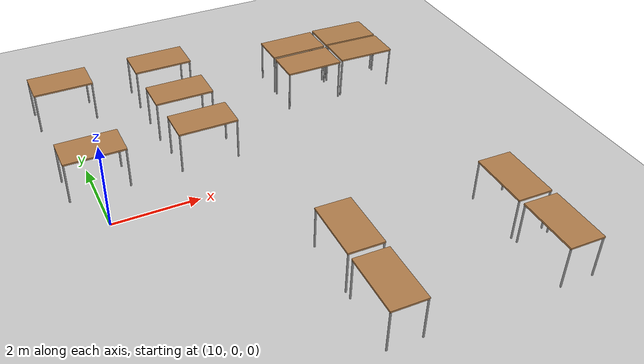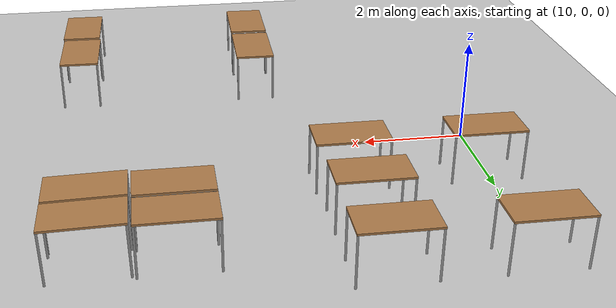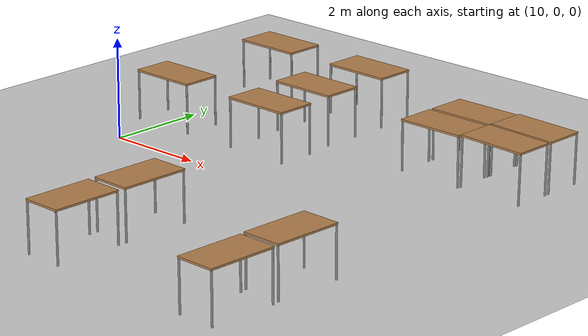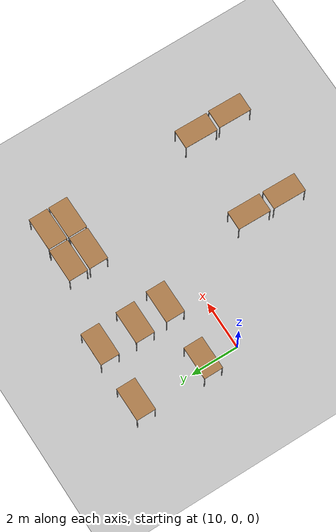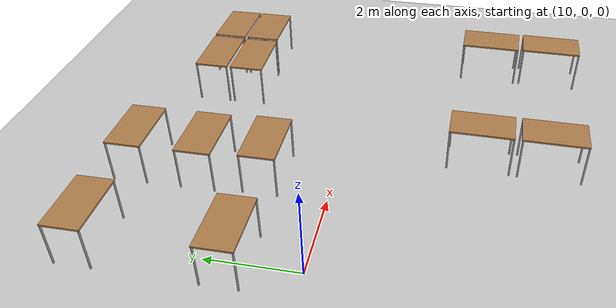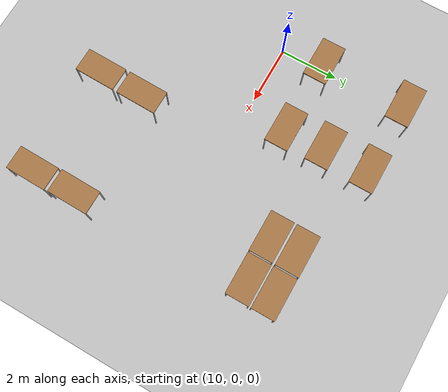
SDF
<sdf version="1.6">
 <world name="default">
  <model name="ground_plane">
   <static>1</static>
   <link name="link">
    <collision name="collision">
     <geometry><plane><normal>0 0 1</normal><size>100 100</size></plane></geometry>
     <surface><friction><ode><mu>100</mu><mu2>50</mu2></ode></friction></surface>
    </collision>
    <visual name="visual">
     <cast_shadows>0</cast_shadows>
     <geometry><plane><normal>0 0 1</normal><size>100 100</size></plane></geometry>
     <material>
      <script><uri>file://media/materials/scripts/gazebo.material</uri><name>Gazebo/Grey</name></script>
     </material>
    </visual>
   </link>
  </model>
  <model name="table">
   <static>0</static>
   <link name="link">
    <collision name="surface">
     <pose>0 0 1 0 -0 0</pose>
     <geometry><box><size>1.5 0.8 0.03</size></box></geometry>
     <surface><friction><ode><mu>0.6</mu><mu2>0.6</mu2></ode></friction></surface>
    </collision>
    <visual name="visual1">
     <pose>0 0 1 0 -0 0</pose>
     <geometry><box><size>1.4 0.8 0.04</size></box></geometry>
     <material>
      <script><uri>file://media/materials/scripts/gazebo.material</uri><name>Gazebo/Wood</name></script>
     </material>
    </visual>
    <collision name="front_left_leg">
     <pose>0.68 0.38 0.5 0 -0 0</pose>
     <geometry><cylinder><radius>0.02</radius><length>1</length></cylinder></geometry>
    </collision>
    <visual name="front_left_leg">
     <pose>0.68 0.38 0.5 0 -0 0</pose>
     <geometry><cylinder><radius>0.02</radius><length>1</length></cylinder></geometry>
     <material>
      <script><uri>file://media/materials/scripts/gazebo.material</uri><name>Gazebo/Grey</name></script>
     </material>
    </visual>
    <collision name="front_right_leg">
     <pose>0.68 -0.38 0.5 0 -0 0</pose>
     <geometry><cylinder><radius>0.02</radius><length>1</length></cylinder></geometry>
    </collision>
    <visual name="front_right_leg">
     <pose>0.68 -0.38 0.5 0 -0 0</pose>
     <geometry><cylinder><radius>0.02</radius><length>1</length></cylinder></geometry>
     <material>
      <script><uri>file://media/materials/scripts/gazebo.material</uri><name>Gazebo/Grey</name></script>
     </material>
    </visual>
    <collision name="back_right_leg">
     <pose>-0.68 -0.38 0.5 0 -0 0</pose>
     <geometry><cylinder><radius>0.02</radius><length>1</length></cylinder></geometry>
    </collision>
    <visual name="back_right_leg">
     <pose>-0.68 -0.38 0.5 0 -0 0</pose>
     <geometry><cylinder><radius>0.02</radius><length>1</length></cylinder></geometry>
     <material>
      <script><uri>file://media/materials/scripts/gazebo.material</uri><name>Gazebo/Grey</name></script>
     </material>
    </visual>
    <collision name="back_left_leg">
     <pose>-0.68 0.38 0.5 0 -0 0</pose>
     <geometry><cylinder><radius>0.02</radius><length>1</length></cylinder></geometry>
    </collision>
    <visual name="back_left_leg">
     <pose>-0.68 0.38 0.5 0 -0 0</pose>
     <geometry><cylinder><radius>0.02</radius><length>1</length></cylinder></geometry>
     <material>
      <script><uri>file://media/materials/scripts/gazebo.material</uri><name>Gazebo/Grey</name></script>
     </material>
    </visual>
    <inertial>
     <inertia><ixx>1</ixx><ixy>0</ixy><ixz>0</ixz><iyy>1</iyy><iyz>0</iyz><izz>1</izz></inertia>
     <mass>1</mass>
    </inertial>
   </link>
   <pose>12.5567 4.33789 -1e-06 0 1e-06 0</pose>
  </model>
  <model name="table_clone">
   <static>0</static>
   <link name="link">
    <collision name="surface">
     <pose>0 0 1 0 -0 0</pose>
     <geometry><box><size>1.5 0.8 0.03</size></box></geometry>
     <surface><friction><ode><mu>0.6</mu><mu2>0.6</mu2></ode></friction></surface>
    </collision>
    <visual name="visual1">
     <pose>0 0 1 0 -0 0</pose>
     <geometry><box><size>1.4 0.8 0.04</size></box></geometry>
     <material>
      <script><uri>file://media/materials/scripts/gazebo.material</uri><name>Gazebo/Wood</name></script>
     </material>
    </visual>
    <collision name="front_left_leg">
     <pose>0.68 0.38 0.5 0 -0 0</pose>
     <geometry><cylinder><radius>0.02</radius><length>1</length></cylinder></geometry>
    </collision>
    <visual name="front_left_leg">
     <pose>0.68 0.38 0.5 0 -0 0</pose>
     <geometry><cylinder><radius>0.02</radius><length>1</length></cylinder></geometry>
     <material>
      <script><uri>file://media/materials/scripts/gazebo.material</uri><name>Gazebo/Grey</name></script>
     </material>
    </visual>
    <collision name="front_right_leg">
     <pose>0.68 -0.38 0.5 0 -0 0</pose>
     <geometry><cylinder><radius>0.02</radius><length>1</length></cylinder></geometry>
    </collision>
    <visual name="front_right_leg">
     <pose>0.68 -0.38 0.5 0 -0 0</pose>
     <geometry><cylinder><radius>0.02</radius><length>1</length></cylinder></geometry>
     <material>
      <script><uri>file://media/materials/scripts/gazebo.material</uri><name>Gazebo/Grey</name></script>
     </material>
    </visual>
    <collision name="back_right_leg">
     <pose>-0.68 -0.38 0.5 0 -0 0</pose>
     <geometry><cylinder><radius>0.02</radius><length>1</length></cylinder></geometry>
    </collision>
    <visual name="back_right_leg">
     <pose>-0.68 -0.38 0.5 0 -0 0</pose>
     <geometry><cylinder><radius>0.02</radius><length>1</length></cylinder></geometry>
     <material>
      <script><uri>file://media/materials/scripts/gazebo.material</uri><name>Gazebo/Grey</name></script>
     </material>
    </visual>
    <collision name="back_left_leg">
     <pose>-0.68 0.38 0.5 0 -0 0</pose>
     <geometry><cylinder><radius>0.02</radius><length>1</length></cylinder></geometry>
    </collision>
    <visual name="back_left_leg">
     <pose>-0.68 0.38 0.5 0 -0 0</pose>
     <geometry><cylinder><radius>0.02</radius><length>1</length></cylinder></geometry>
     <material>
      <script><uri>file://media/materials/scripts/gazebo.material</uri><name>Gazebo/Grey</name></script>
     </material>
    </visual>
    <inertial>
     <inertia><ixx>1</ixx><ixy>0</ixy><ixz>0</ixz><iyy>1</iyy><iyz>0</iyz><izz>1</izz></inertia>
     <mass>1</mass>
    </inertial>
   </link>
   <pose>12.5697 2.81167 -9e-06 0 -1e-06 0</pose>
  </model>
  <model name="table_clone_0">
   <static>0</static>
   <link name="link">
    <collision name="surface">
     <pose>0 0 1 0 -0 0</pose>
     <geometry><box><size>1.5 0.8 0.03</size></box></geometry>
     <surface><friction><ode><mu>0.6</mu><mu2>0.6</mu2></ode></friction></surface>
    </collision>
    <visual name="visual1">
     <pose>0 0 1 0 -0 0</pose>
     <geometry><box><size>1.4 0.8 0.04</size></box></geometry>
     <material>
      <script><uri>file://media/materials/scripts/gazebo.material</uri><name>Gazebo/Wood</name></script>
     </material>
    </visual>
    <collision name="front_left_leg">
     <pose>0.68 0.38 0.5 0 -0 0</pose>
     <geometry><cylinder><radius>0.02</radius><length>1</length></cylinder></geometry>
    </collision>
    <visual name="front_left_leg">
     <pose>0.68 0.38 0.5 0 -0 0</pose>
     <geometry><cylinder><radius>0.02</radius><length>1</length></cylinder></geometry>
     <material>
      <script><uri>file://media/materials/scripts/gazebo.material</uri><name>Gazebo/Grey</name></script>
     </material>
    </visual>
    <collision name="front_right_leg">
     <pose>0.68 -0.38 0.5 0 -0 0</pose>
     <geometry><cylinder><radius>0.02</radius><length>1</length></cylinder></geometry>
    </collision>
    <visual name="front_right_leg">
     <pose>0.68 -0.38 0.5 0 -0 0</pose>
     <geometry><cylinder><radius>0.02</radius><length>1</length></cylinder></geometry>
     <material>
      <script><uri>file://media/materials/scripts/gazebo.material</uri><name>Gazebo/Grey</name></script>
     </material>
    </visual>
    <collision name="back_right_leg">
     <pose>-0.68 -0.38 0.5 0 -0 0</pose>
     <geometry><cylinder><radius>0.02</radius><length>1</length></cylinder></geometry>
    </collision>
    <visual name="back_right_leg">
     <pose>-0.68 -0.38 0.5 0 -0 0</pose>
     <geometry><cylinder><radius>0.02</radius><length>1</length></cylinder></geometry>
     <material>
      <script><uri>file://media/materials/scripts/gazebo.material</uri><name>Gazebo/Grey</name></script>
     </material>
    </visual>
    <collision name="back_left_leg">
     <pose>-0.68 0.38 0.5 0 -0 0</pose>
     <geometry><cylinder><radius>0.02</radius><length>1</length></cylinder></geometry>
    </collision>
    <visual name="back_left_leg">
     <pose>-0.68 0.38 0.5 0 -0 0</pose>
     <geometry><cylinder><radius>0.02</radius><length>1</length></cylinder></geometry>
     <material>
      <script><uri>file://media/materials/scripts/gazebo.material</uri><name>Gazebo/Grey</name></script>
     </material>
    </visual>
    <inertial>
     <inertia><ixx>1</ixx><ixy>0</ixy><ixz>0</ixz><iyy>1</iyy><iyz>0</iyz><izz>1</izz></inertia>
     <mass>1</mass>
    </inertial>
   </link>
   <pose>12.6467 1.45459 -1e-06 0 1e-06 0</pose>
  </model>
  <model name="table_clone_1">
   <static>0</static>
   <link name="link">
    <collision name="surface">
     <pose>0 0 1 0 -0 0</pose>
     <geometry><box><size>1.5 0.8 0.03</size></box></geometry>
     <surface><friction><ode><mu>0.6</mu><mu2>0.6</mu2></ode></friction></surface>
    </collision>
    <visual name="visual1">
     <pose>0 0 1 0 -0 0</pose>
     <geometry><box><size>1.4 0.8 0.04</size></box></geometry>
     <material>
      <script><uri>file://media/materials/scripts/gazebo.material</uri><name>Gazebo/Wood</name></script>
     </material>
    </visual>
    <collision name="front_left_leg">
     <pose>0.68 0.38 0.5 0 -0 0</pose>
     <geometry><cylinder><radius>0.02</radius><length>1</length></cylinder></geometry>
    </collision>
    <visual name="front_left_leg">
     <pose>0.68 0.38 0.5 0 -0 0</pose>
     <geometry><cylinder><radius>0.02</radius><length>1</length></cylinder></geometry>
     <material>
      <script><uri>file://media/materials/scripts/gazebo.material</uri><name>Gazebo/Grey</name></script>
     </material>
    </visual>
    <collision name="front_right_leg">
     <pose>0.68 -0.38 0.5 0 -0 0</pose>
     <geometry><cylinder><radius>0.02</radius><length>1</length></cylinder></geometry>
    </collision>
    <visual name="front_right_leg">
     <pose>0.68 -0.38 0.5 0 -0 0</pose>
     <geometry><cylinder><radius>0.02</radius><length>1</length></cylinder></geometry>
     <material>
      <script><uri>file://media/materials/scripts/gazebo.material</uri><name>Gazebo/Grey</name></script>
     </material>
    </visual>
    <collision name="back_right_leg">
     <pose>-0.68 -0.38 0.5 0 -0 0</pose>
     <geometry><cylinder><radius>0.02</radius><length>1</length></cylinder></geometry>
    </collision>
    <visual name="back_right_leg">
     <pose>-0.68 -0.38 0.5 0 -0 0</pose>
     <geometry><cylinder><radius>0.02</radius><length>1</length></cylinder></geometry>
     <material>
      <script><uri>file://media/materials/scripts/gazebo.material</uri><name>Gazebo/Grey</name></script>
     </material>
    </visual>
    <collision name="back_left_leg">
     <pose>-0.68 0.38 0.5 0 -0 0</pose>
     <geometry><cylinder><radius>0.02</radius><length>1</length></cylinder></geometry>
    </collision>
    <visual name="back_left_leg">
     <pose>-0.68 0.38 0.5 0 -0 0</pose>
     <geometry><cylinder><radius>0.02</radius><length>1</length></cylinder></geometry>
     <material>
      <script><uri>file://media/materials/scripts/gazebo.material</uri><name>Gazebo/Grey</name></script>
     </material>
    </visual>
    <inertial>
     <inertia><ixx>1</ixx><ixy>0</ixy><ixz>0</ixz><iyy>1</iyy><iyz>0</iyz><izz>1</izz></inertia>
     <mass>1</mass>
    </inertial>
   </link>
   <pose>10.0886 1.4527 -9e-06 0 -1e-06 0</pose>
  </model>
  <model name="table_clone_3">
   <static>0</static>
   <link name="link">
    <collision name="surface">
     <pose>0 0 1 0 -0 0</pose>
     <geometry><box><size>1.5 0.8 0.03</size></box></geometry>
     <surface><friction><ode><mu>0.6</mu><mu2>0.6</mu2></ode></friction></surface>
    </collision>
    <visual name="visual1">
     <pose>0 0 1 0 -0 0</pose>
     <geometry><box><size>1.4 0.8 0.04</size></box></geometry>
     <material>
      <script><uri>file://media/materials/scripts/gazebo.material</uri><name>Gazebo/Wood</name></script>
     </material>
    </visual>
    <collision name="front_left_leg">
     <pose>0.68 0.38 0.5 0 -0 0</pose>
     <geometry><cylinder><radius>0.02</radius><length>1</length></cylinder></geometry>
    </collision>
    <visual name="front_left_leg">
     <pose>0.68 0.38 0.5 0 -0 0</pose>
     <geometry><cylinder><radius>0.02</radius><length>1</length></cylinder></geometry>
     <material>
      <script><uri>file://media/materials/scripts/gazebo.material</uri><name>Gazebo/Grey</name></script>
     </material>
    </visual>
    <collision name="front_right_leg">
     <pose>0.68 -0.38 0.5 0 -0 0</pose>
     <geometry><cylinder><radius>0.02</radius><length>1</length></cylinder></geometry>
    </collision>
    <visual name="front_right_leg">
     <pose>0.68 -0.38 0.5 0 -0 0</pose>
     <geometry><cylinder><radius>0.02</radius><length>1</length></cylinder></geometry>
     <material>
      <script><uri>file://media/materials/scripts/gazebo.material</uri><name>Gazebo/Grey</name></script>
     </material>
    </visual>
    <collision name="back_right_leg">
     <pose>-0.68 -0.38 0.5 0 -0 0</pose>
     <geometry><cylinder><radius>0.02</radius><length>1</length></cylinder></geometry>
    </collision>
    <visual name="back_right_leg">
     <pose>-0.68 -0.38 0.5 0 -0 0</pose>
     <geometry><cylinder><radius>0.02</radius><length>1</length></cylinder></geometry>
     <material>
      <script><uri>file://media/materials/scripts/gazebo.material</uri><name>Gazebo/Grey</name></script>
     </material>
    </visual>
    <collision name="back_left_leg">
     <pose>-0.68 0.38 0.5 0 -0 0</pose>
     <geometry><cylinder><radius>0.02</radius><length>1</length></cylinder></geometry>
    </collision>
    <visual name="back_left_leg">
     <pose>-0.68 0.38 0.5 0 -0 0</pose>
     <geometry><cylinder><radius>0.02</radius><length>1</length></cylinder></geometry>
     <material>
      <script><uri>file://media/materials/scripts/gazebo.material</uri><name>Gazebo/Grey</name></script>
     </material>
    </visual>
    <inertial>
     <inertia><ixx>1</ixx><ixy>0</ixy><ixz>0</ixz><iyy>1</iyy><iyz>0</iyz><izz>1</izz></inertia>
     <mass>1</mass>
    </inertial>
   </link>
   <pose>10.0949 4.34803 -9e-06 0 -1e-06 0</pose>
  </model>
  <model name="table_clone_8_clone_2">
   <static>0</static>
   <link name="link">
    <collision name="surface">
     <pose>0 0 1 0 -0 0</pose>
     <geometry><box><size>1.5 0.8 0.03</size></box></geometry>
     <surface><friction><ode><mu>0.6</mu><mu2>0.6</mu2></ode></friction></surface>
    </collision>
    <visual name="visual1">
     <pose>0 0 1 0 -0 0</pose>
     <geometry><box><size>1.4 0.8 0.04</size></box></geometry>
     <material>
      <script><uri>file://media/materials/scripts/gazebo.material</uri><name>Gazebo/Wood</name></script>
     </material>
    </visual>
    <collision name="front_left_leg">
     <pose>0.68 0.38 0.5 0 -0 0</pose>
     <geometry><cylinder><radius>0.02</radius><length>1</length></cylinder></geometry>
    </collision>
    <visual name="front_left_leg">
     <pose>0.68 0.38 0.5 0 -0 0</pose>
     <geometry><cylinder><radius>0.02</radius><length>1</length></cylinder></geometry>
     <material>
      <script><uri>file://media/materials/scripts/gazebo.material</uri><name>Gazebo/Grey</name></script>
     </material>
    </visual>
    <collision name="front_right_leg">
     <pose>0.68 -0.38 0.5 0 -0 0</pose>
     <geometry><cylinder><radius>0.02</radius><length>1</length></cylinder></geometry>
    </collision>
    <visual name="front_right_leg">
     <pose>0.68 -0.38 0.5 0 -0 0</pose>
     <geometry><cylinder><radius>0.02</radius><length>1</length></cylinder></geometry>
     <material>
      <script><uri>file://media/materials/scripts/gazebo.material</uri><name>Gazebo/Grey</name></script>
     </material>
    </visual>
    <collision name="back_right_leg">
     <pose>-0.68 -0.38 0.5 0 -0 0</pose>
     <geometry><cylinder><radius>0.02</radius><length>1</length></cylinder></geometry>
    </collision>
    <visual name="back_right_leg">
     <pose>-0.68 -0.38 0.5 0 -0 0</pose>
     <geometry><cylinder><radius>0.02</radius><length>1</length></cylinder></geometry>
     <material>
      <script><uri>file://media/materials/scripts/gazebo.material</uri><name>Gazebo/Grey</name></script>
     </material>
    </visual>
    <collision name="back_left_leg">
     <pose>-0.68 0.38 0.5 0 -0 0</pose>
     <geometry><cylinder><radius>0.02</radius><length>1</length></cylinder></geometry>
    </collision>
    <visual name="back_left_leg">
     <pose>-0.68 0.38 0.5 0 -0 0</pose>
     <geometry><cylinder><radius>0.02</radius><length>1</length></cylinder></geometry>
     <material>
      <script><uri>file://media/materials/scripts/gazebo.material</uri><name>Gazebo/Grey</name></script>
     </material>
    </visual>
    <inertial>
     <inertia><ixx>1</ixx><ixy>0</ixy><ixz>0</ixz><iyy>1</iyy><iyz>0</iyz><izz>1</izz></inertia>
     <mass>1</mass>
    </inertial>
   </link>
   <pose>17.6975 -3.1554 -8e-06 0 -1e-06 -1.58704</pose>
  </model>
  <model name="table_clone_8_clone_3">
   <static>0</static>
   <link name="link">
    <collision name="surface">
     <pose>0 0 1 0 -0 0</pose>
     <geometry><box><size>1.5 0.8 0.03</size></box></geometry>
     <surface><friction><ode><mu>0.6</mu><mu2>0.6</mu2></ode></friction></surface>
    </collision>
    <visual name="visual1">
     <pose>0 0 1 0 -0 0</pose>
     <geometry><box><size>1.4 0.8 0.04</size></box></geometry>
     <material>
      <script><uri>file://media/materials/scripts/gazebo.material</uri><name>Gazebo/Wood</name></script>
     </material>
    </visual>
    <collision name="front_left_leg">
     <pose>0.68 0.38 0.5 0 -0 0</pose>
     <geometry><cylinder><radius>0.02</radius><length>1</length></cylinder></geometry>
    </collision>
    <visual name="front_left_leg">
     <pose>0.68 0.38 0.5 0 -0 0</pose>
     <geometry><cylinder><radius>0.02</radius><length>1</length></cylinder></geometry>
     <material>
      <script><uri>file://media/materials/scripts/gazebo.material</uri><name>Gazebo/Grey</name></script>
     </material>
    </visual>
    <collision name="front_right_leg">
     <pose>0.68 -0.38 0.5 0 -0 0</pose>
     <geometry><cylinder><radius>0.02</radius><length>1</length></cylinder></geometry>
    </collision>
    <visual name="front_right_leg">
     <pose>0.68 -0.38 0.5 0 -0 0</pose>
     <geometry><cylinder><radius>0.02</radius><length>1</length></cylinder></geometry>
     <material>
      <script><uri>file://media/materials/scripts/gazebo.material</uri><name>Gazebo/Grey</name></script>
     </material>
    </visual>
    <collision name="back_right_leg">
     <pose>-0.68 -0.38 0.5 0 -0 0</pose>
     <geometry><cylinder><radius>0.02</radius><length>1</length></cylinder></geometry>
    </collision>
    <visual name="back_right_leg">
     <pose>-0.68 -0.38 0.5 0 -0 0</pose>
     <geometry><cylinder><radius>0.02</radius><length>1</length></cylinder></geometry>
     <material>
      <script><uri>file://media/materials/scripts/gazebo.material</uri><name>Gazebo/Grey</name></script>
     </material>
    </visual>
    <collision name="back_left_leg">
     <pose>-0.68 0.38 0.5 0 -0 0</pose>
     <geometry><cylinder><radius>0.02</radius><length>1</length></cylinder></geometry>
    </collision>
    <visual name="back_left_leg">
     <pose>-0.68 0.38 0.5 0 -0 0</pose>
     <geometry><cylinder><radius>0.02</radius><length>1</length></cylinder></geometry>
     <material>
      <script><uri>file://media/materials/scripts/gazebo.material</uri><name>Gazebo/Grey</name></script>
     </material>
    </visual>
    <inertial>
     <inertia><ixx>1</ixx><ixy>0</ixy><ixz>0</ixz><iyy>1</iyy><iyz>0</iyz><izz>1</izz></inertia>
     <mass>1</mass>
    </inertial>
   </link>
   <pose>17.7018 -4.66294 -2e-06 0 1e-06 -1.58704</pose>
  </model>
  <model name="table_clone_8_clone_4">
   <static>0</static>
   <link name="link">
    <collision name="surface">
     <pose>0 0 1 0 -0 0</pose>
     <geometry><box><size>1.5 0.8 0.03</size></box></geometry>
     <surface><friction><ode><mu>0.6</mu><mu2>0.6</mu2></ode></friction></surface>
    </collision>
    <visual name="visual1">
     <pose>0 0 1 0 -0 0</pose>
     <geometry><box><size>1.4 0.8 0.04</size></box></geometry>
     <material>
      <script><uri>file://media/materials/scripts/gazebo.material</uri><name>Gazebo/Wood</name></script>
     </material>
    </visual>
    <collision name="front_left_leg">
     <pose>0.68 0.38 0.5 0 -0 0</pose>
     <geometry><cylinder><radius>0.02</radius><length>1</length></cylinder></geometry>
    </collision>
    <visual name="front_left_leg">
     <pose>0.68 0.38 0.5 0 -0 0</pose>
     <geometry><cylinder><radius>0.02</radius><length>1</length></cylinder></geometry>
     <material>
      <script><uri>file://media/materials/scripts/gazebo.material</uri><name>Gazebo/Grey</name></script>
     </material>
    </visual>
    <collision name="front_right_leg">
     <pose>0.68 -0.38 0.5 0 -0 0</pose>
     <geometry><cylinder><radius>0.02</radius><length>1</length></cylinder></geometry>
    </collision>
    <visual name="front_right_leg">
     <pose>0.68 -0.38 0.5 0 -0 0</pose>
     <geometry><cylinder><radius>0.02</radius><length>1</length></cylinder></geometry>
     <material>
      <script><uri>file://media/materials/scripts/gazebo.material</uri><name>Gazebo/Grey</name></script>
     </material>
    </visual>
    <collision name="back_right_leg">
     <pose>-0.68 -0.38 0.5 0 -0 0</pose>
     <geometry><cylinder><radius>0.02</radius><length>1</length></cylinder></geometry>
    </collision>
    <visual name="back_right_leg">
     <pose>-0.68 -0.38 0.5 0 -0 0</pose>
     <geometry><cylinder><radius>0.02</radius><length>1</length></cylinder></geometry>
     <material>
      <script><uri>file://media/materials/scripts/gazebo.material</uri><name>Gazebo/Grey</name></script>
     </material>
    </visual>
    <collision name="back_left_leg">
     <pose>-0.68 0.38 0.5 0 -0 0</pose>
     <geometry><cylinder><radius>0.02</radius><length>1</length></cylinder></geometry>
    </collision>
    <visual name="back_left_leg">
     <pose>-0.68 0.38 0.5 0 -0 0</pose>
     <geometry><cylinder><radius>0.02</radius><length>1</length></cylinder></geometry>
     <material>
      <script><uri>file://media/materials/scripts/gazebo.material</uri><name>Gazebo/Grey</name></script>
     </material>
    </visual>
    <inertial>
     <inertia><ixx>1</ixx><ixy>0</ixy><ixz>0</ixz><iyy>1</iyy><iyz>0</iyz><izz>1</izz></inertia>
     <mass>1</mass>
    </inertial>
   </link>
   <pose>13.9208 -3.05599 -8e-06 0 -1e-06 -1.58704</pose>
  </model>
  <model name="table_clone_8_clone_5">
   <static>0</static>
   <link name="link">
    <collision name="surface">
     <pose>0 0 1 0 -0 0</pose>
     <geometry><box><size>1.5 0.8 0.03</size></box></geometry>
     <surface><friction><ode><mu>0.6</mu><mu2>0.6</mu2></ode></friction></surface>
    </collision>
    <visual name="visual1">
     <pose>0 0 1 0 -0 0</pose>
     <geometry><box><size>1.4 0.8 0.04</size></box></geometry>
     <material>
      <script><uri>file://media/materials/scripts/gazebo.material</uri><name>Gazebo/Wood</name></script>
     </material>
    </visual>
    <collision name="front_left_leg">
     <pose>0.68 0.38 0.5 0 -0 0</pose>
     <geometry><cylinder><radius>0.02</radius><length>1</length></cylinder></geometry>
    </collision>
    <visual name="front_left_leg">
     <pose>0.68 0.38 0.5 0 -0 0</pose>
     <geometry><cylinder><radius>0.02</radius><length>1</length></cylinder></geometry>
     <material>
      <script><uri>file://media/materials/scripts/gazebo.material</uri><name>Gazebo/Grey</name></script>
     </material>
    </visual>
    <collision name="front_right_leg">
     <pose>0.68 -0.38 0.5 0 -0 0</pose>
     <geometry><cylinder><radius>0.02</radius><length>1</length></cylinder></geometry>
    </collision>
    <visual name="front_right_leg">
     <pose>0.68 -0.38 0.5 0 -0 0</pose>
     <geometry><cylinder><radius>0.02</radius><length>1</length></cylinder></geometry>
     <material>
      <script><uri>file://media/materials/scripts/gazebo.material</uri><name>Gazebo/Grey</name></script>
     </material>
    </visual>
    <collision name="back_right_leg">
     <pose>-0.68 -0.38 0.5 0 -0 0</pose>
     <geometry><cylinder><radius>0.02</radius><length>1</length></cylinder></geometry>
    </collision>
    <visual name="back_right_leg">
     <pose>-0.68 -0.38 0.5 0 -0 0</pose>
     <geometry><cylinder><radius>0.02</radius><length>1</length></cylinder></geometry>
     <material>
      <script><uri>file://media/materials/scripts/gazebo.material</uri><name>Gazebo/Grey</name></script>
     </material>
    </visual>
    <collision name="back_left_leg">
     <pose>-0.68 0.38 0.5 0 -0 0</pose>
     <geometry><cylinder><radius>0.02</radius><length>1</length></cylinder></geometry>
    </collision>
    <visual name="back_left_leg">
     <pose>-0.68 0.38 0.5 0 -0 0</pose>
     <geometry><cylinder><radius>0.02</radius><length>1</length></cylinder></geometry>
     <material>
      <script><uri>file://media/materials/scripts/gazebo.material</uri><name>Gazebo/Grey</name></script>
     </material>
    </visual>
    <inertial>
     <inertia><ixx>1</ixx><ixy>0</ixy><ixz>0</ixz><iyy>1</iyy><iyz>0</iyz><izz>1</izz></inertia>
     <mass>1</mass>
    </inertial>
   </link>
   <pose>13.8957 -4.59671 -2e-06 0 1e-06 -1.58704</pose>
  </model>
  <model name="table_clone_clone">
   <static>0</static>
   <link name="link">
    <collision name="surface">
     <pose>0 0 1 0 -0 0</pose>
     <geometry><box><size>1.5 0.8 0.03</size></box></geometry>
     <surface><friction><ode><mu>0.6</mu><mu2>0.6</mu2></ode></friction></surface>
    </collision>
    <visual name="visual1">
     <pose>0 0 1 0 -0 0</pose>
     <geometry><box><size>1.4 0.8 0.04</size></box></geometry>
     <material>
      <script><uri>file://media/materials/scripts/gazebo.material</uri><name>Gazebo/Wood</name></script>
     </material>
    </visual>
    <collision name="front_left_leg">
     <pose>0.68 0.38 0.5 0 -0 0</pose>
     <geometry><cylinder><radius>0.02</radius><length>1</length></cylinder></geometry>
    </collision>
    <visual name="front_left_leg">
     <pose>0.68 0.38 0.5 0 -0 0</pose>
     <geometry><cylinder><radius>0.02</radius><length>1</length></cylinder></geometry>
     <material>
      <script><uri>file://media/materials/scripts/gazebo.material</uri><name>Gazebo/Grey</name></script>
     </material>
    </visual>
    <collision name="front_right_leg">
     <pose>0.68 -0.38 0.5 0 -0 0</pose>
     <geometry><cylinder><radius>0.02</radius><length>1</length></cylinder></geometry>
    </collision>
    <visual name="front_right_leg">
     <pose>0.68 -0.38 0.5 0 -0 0</pose>
     <geometry><cylinder><radius>0.02</radius><length>1</length></cylinder></geometry>
     <material>
      <script><uri>file://media/materials/scripts/gazebo.material</uri><name>Gazebo/Grey</name></script>
     </material>
    </visual>
    <collision name="back_right_leg">
     <pose>-0.68 -0.38 0.5 0 -0 0</pose>
     <geometry><cylinder><radius>0.02</radius><length>1</length></cylinder></geometry>
    </collision>
    <visual name="back_right_leg">
     <pose>-0.68 -0.38 0.5 0 -0 0</pose>
     <geometry><cylinder><radius>0.02</radius><length>1</length></cylinder></geometry>
     <material>
      <script><uri>file://media/materials/scripts/gazebo.material</uri><name>Gazebo/Grey</name></script>
     </material>
    </visual>
    <collision name="back_left_leg">
     <pose>-0.68 0.38 0.5 0 -0 0</pose>
     <geometry><cylinder><radius>0.02</radius><length>1</length></cylinder></geometry>
    </collision>
    <visual name="back_left_leg">
     <pose>-0.68 0.38 0.5 0 -0 0</pose>
     <geometry><cylinder><radius>0.02</radius><length>1</length></cylinder></geometry>
     <material>
      <script><uri>file://media/materials/scripts/gazebo.material</uri><name>Gazebo/Grey</name></script>
     </material>
    </visual>
    <inertial>
     <inertia><ixx>1</ixx><ixy>0</ixy><ixz>0</ixz><iyy>1</iyy><iyz>0</iyz><izz>1</izz></inertia>
     <mass>1</mass>
    </inertial>
   </link>
   <pose>15.9046 3.60291 -1.3e-05 0 -0 0.003467</pose>
  </model>
  <model name="table_clone_clone_0">
   <static>0</static>
   <link name="link">
    <collision name="surface">
     <pose>0 0 1 0 -0 0</pose>
     <geometry><box><size>1.5 0.8 0.03</size></box></geometry>
     <surface><friction><ode><mu>0.6</mu><mu2>0.6</mu2></ode></friction></surface>
    </collision>
    <visual name="visual1">
     <pose>0 0 1 0 -0 0</pose>
     <geometry><box><size>1.4 0.8 0.04</size></box></geometry>
     <material>
      <script><uri>file://media/materials/scripts/gazebo.material</uri><name>Gazebo/Wood</name></script>
     </material>
    </visual>
    <collision name="front_left_leg">
     <pose>0.68 0.38 0.5 0 -0 0</pose>
     <geometry><cylinder><radius>0.02</radius><length>1</length></cylinder></geometry>
    </collision>
    <visual name="front_left_leg">
     <pose>0.68 0.38 0.5 0 -0 0</pose>
     <geometry><cylinder><radius>0.02</radius><length>1</length></cylinder></geometry>
     <material>
      <script><uri>file://media/materials/scripts/gazebo.material</uri><name>Gazebo/Grey</name></script>
     </material>
    </visual>
    <collision name="front_right_leg">
     <pose>0.68 -0.38 0.5 0 -0 0</pose>
     <geometry><cylinder><radius>0.02</radius><length>1</length></cylinder></geometry>
    </collision>
    <visual name="front_right_leg">
     <pose>0.68 -0.38 0.5 0 -0 0</pose>
     <geometry><cylinder><radius>0.02</radius><length>1</length></cylinder></geometry>
     <material>
      <script><uri>file://media/materials/scripts/gazebo.material</uri><name>Gazebo/Grey</name></script>
     </material>
    </visual>
    <collision name="back_right_leg">
     <pose>-0.68 -0.38 0.5 0 -0 0</pose>
     <geometry><cylinder><radius>0.02</radius><length>1</length></cylinder></geometry>
    </collision>
    <visual name="back_right_leg">
     <pose>-0.68 -0.38 0.5 0 -0 0</pose>
     <geometry><cylinder><radius>0.02</radius><length>1</length></cylinder></geometry>
     <material>
      <script><uri>file://media/materials/scripts/gazebo.material</uri><name>Gazebo/Grey</name></script>
     </material>
    </visual>
    <collision name="back_left_leg">
     <pose>-0.68 0.38 0.5 0 -0 0</pose>
     <geometry><cylinder><radius>0.02</radius><length>1</length></cylinder></geometry>
    </collision>
    <visual name="back_left_leg">
     <pose>-0.68 0.38 0.5 0 -0 0</pose>
     <geometry><cylinder><radius>0.02</radius><length>1</length></cylinder></geometry>
     <material>
      <script><uri>file://media/materials/scripts/gazebo.material</uri><name>Gazebo/Grey</name></script>
     </material>
    </visual>
    <inertial>
     <inertia><ixx>1</ixx><ixy>0</ixy><ixz>0</ixz><iyy>1</iyy><iyz>0</iyz><izz>1</izz></inertia>
     <mass>1</mass>
    </inertial>
   </link>
   <pose>17.3338 3.59459 0.015101 0 0.021575 0.003468</pose>
  </model>
  <model name="table_clone_clone_1">
   <static>0</static>
   <link name="link">
    <collision name="surface">
     <pose>0 0 1 0 -0 0</pose>
     <geometry><box><size>1.5 0.8 0.03</size></box></geometry>
     <surface><friction><ode><mu>0.6</mu><mu2>0.6</mu2></ode></friction></surface>
    </collision>
    <visual name="visual1">
     <pose>0 0 1 0 -0 0</pose>
     <geometry><box><size>1.4 0.8 0.04</size></box></geometry>
     <material>
      <script><uri>file://media/materials/scripts/gazebo.material</uri><name>Gazebo/Wood</name></script>
     </material>
    </visual>
    <collision name="front_left_leg">
     <pose>0.68 0.38 0.5 0 -0 0</pose>
     <geometry><cylinder><radius>0.02</radius><length>1</length></cylinder></geometry>
    </collision>
    <visual name="front_left_leg">
     <pose>0.68 0.38 0.5 0 -0 0</pose>
     <geometry><cylinder><radius>0.02</radius><length>1</length></cylinder></geometry>
     <material>
      <script><uri>file://media/materials/scripts/gazebo.material</uri><name>Gazebo/Grey</name></script>
     </material>
    </visual>
    <collision name="front_right_leg">
     <pose>0.68 -0.38 0.5 0 -0 0</pose>
     <geometry><cylinder><radius>0.02</radius><length>1</length></cylinder></geometry>
    </collision>
    <visual name="front_right_leg">
     <pose>0.68 -0.38 0.5 0 -0 0</pose>
     <geometry><cylinder><radius>0.02</radius><length>1</length></cylinder></geometry>
     <material>
      <script><uri>file://media/materials/scripts/gazebo.material</uri><name>Gazebo/Grey</name></script>
     </material>
    </visual>
    <collision name="back_right_leg">
     <pose>-0.68 -0.38 0.5 0 -0 0</pose>
     <geometry><cylinder><radius>0.02</radius><length>1</length></cylinder></geometry>
    </collision>
    <visual name="back_right_leg">
     <pose>-0.68 -0.38 0.5 0 -0 0</pose>
     <geometry><cylinder><radius>0.02</radius><length>1</length></cylinder></geometry>
     <material>
      <script><uri>file://media/materials/scripts/gazebo.material</uri><name>Gazebo/Grey</name></script>
     </material>
    </visual>
    <collision name="back_left_leg">
     <pose>-0.68 0.38 0.5 0 -0 0</pose>
     <geometry><cylinder><radius>0.02</radius><length>1</length></cylinder></geometry>
    </collision>
    <visual name="back_left_leg">
     <pose>-0.68 0.38 0.5 0 -0 0</pose>
     <geometry><cylinder><radius>0.02</radius><length>1</length></cylinder></geometry>
     <material>
      <script><uri>file://media/materials/scripts/gazebo.material</uri><name>Gazebo/Grey</name></script>
     </material>
    </visual>
    <inertial>
     <inertia><ixx>1</ixx><ixy>0</ixy><ixz>0</ixz><iyy>1</iyy><iyz>0</iyz><izz>1</izz></inertia>
     <mass>1</mass>
    </inertial>
   </link>
   <pose>15.9086 2.72489 0 0 -0 0.003401</pose>
  </model>
  <model name="table_clone_clone_2">
   <static>0</static>
   <link name="link">
    <collision name="surface">
     <pose>0 0 1 0 -0 0</pose>
     <geometry><box><size>1.5 0.8 0.03</size></box></geometry>
     <surface><friction><ode><mu>0.6</mu><mu2>0.6</mu2></ode></friction></surface>
    </collision>
    <visual name="visual1">
     <pose>0 0 1 0 -0 0</pose>
     <geometry><box><size>1.4 0.8 0.04</size></box></geometry>
     <material>
      <script><uri>file://media/materials/scripts/gazebo.material</uri><name>Gazebo/Wood</name></script>
     </material>
    </visual>
    <collision name="front_left_leg">
     <pose>0.68 0.38 0.5 0 -0 0</pose>
     <geometry><cylinder><radius>0.02</radius><length>1</length></cylinder></geometry>
    </collision>
    <visual name="front_left_leg">
     <pose>0.68 0.38 0.5 0 -0 0</pose>
     <geometry><cylinder><radius>0.02</radius><length>1</length></cylinder></geometry>
     <material>
      <script><uri>file://media/materials/scripts/gazebo.material</uri><name>Gazebo/Grey</name></script>
     </material>
    </visual>
    <collision name="front_right_leg">
     <pose>0.68 -0.38 0.5 0 -0 0</pose>
     <geometry><cylinder><radius>0.02</radius><length>1</length></cylinder></geometry>
    </collision>
    <visual name="front_right_leg">
     <pose>0.68 -0.38 0.5 0 -0 0</pose>
     <geometry><cylinder><radius>0.02</radius><length>1</length></cylinder></geometry>
     <material>
      <script><uri>file://media/materials/scripts/gazebo.material</uri><name>Gazebo/Grey</name></script>
     </material>
    </visual>
    <collision name="back_right_leg">
     <pose>-0.68 -0.38 0.5 0 -0 0</pose>
     <geometry><cylinder><radius>0.02</radius><length>1</length></cylinder></geometry>
    </collision>
    <visual name="back_right_leg">
     <pose>-0.68 -0.38 0.5 0 -0 0</pose>
     <geometry><cylinder><radius>0.02</radius><length>1</length></cylinder></geometry>
     <material>
      <script><uri>file://media/materials/scripts/gazebo.material</uri><name>Gazebo/Grey</name></script>
     </material>
    </visual>
    <collision name="back_left_leg">
     <pose>-0.68 0.38 0.5 0 -0 0</pose>
     <geometry><cylinder><radius>0.02</radius><length>1</length></cylinder></geometry>
    </collision>
    <visual name="back_left_leg">
     <pose>-0.68 0.38 0.5 0 -0 0</pose>
     <geometry><cylinder><radius>0.02</radius><length>1</length></cylinder></geometry>
     <material>
      <script><uri>file://media/materials/scripts/gazebo.material</uri><name>Gazebo/Grey</name></script>
     </material>
    </visual>
    <inertial>
     <inertia><ixx>1</ixx><ixy>0</ixy><ixz>0</ixz><iyy>1</iyy><iyz>0</iyz><izz>1</izz></inertia>
     <mass>1</mass>
    </inertial>
   </link>
   <pose>17.3378 2.7351 0.015098 0 0.021571 0.003401</pose>
  </model>
 </world>
</sdf>
